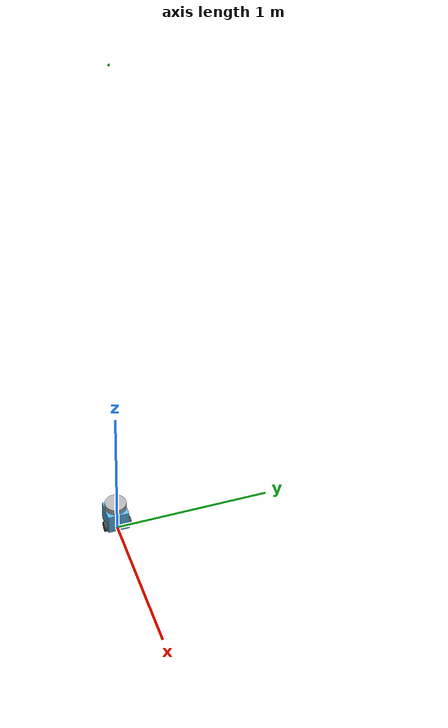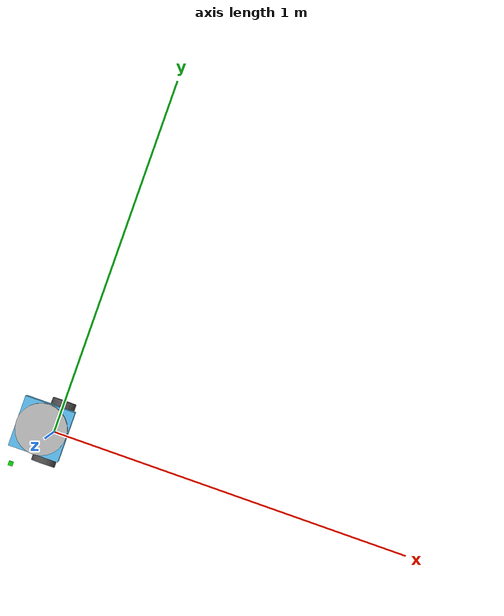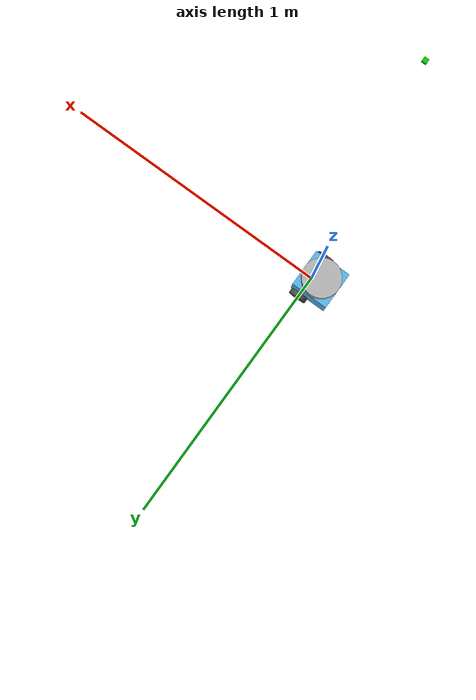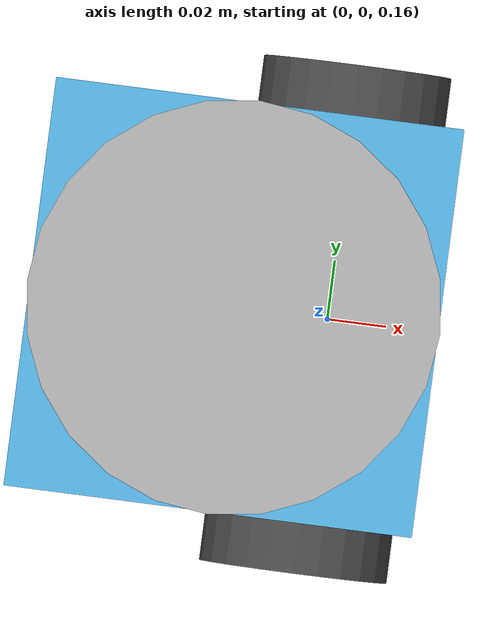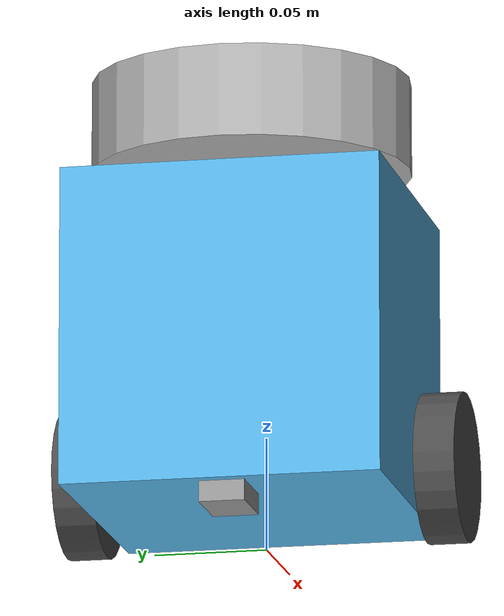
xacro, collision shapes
<?xml version="1.0" ?>
<robot name="turtlebot3_burger" xmlns:xacro="http://ros.org/wiki/xacro">
  <xacro:include filename="$(find turtlebot3_description)/urdf/common_properties.xacro"/>
  <xacro:include filename="$(find turtlebot3_description)/urdf/turtlebot3_burger.gazebo.xacro"/>

  <link name="base_footprint"/>

  <joint name="base_joint" type="fixed">
    <parent link="base_footprint"/>
    <child link="base_link"/>
    <origin xyz="0.0 0.0 0.010" rpy="0 0 0"/>
  </joint>
  <link name="base_link">
    <visual>
      <origin xyz="-0.032 0 0.0" rpy="0 0 0"/>
      <geometry>
        <mesh filename="package://turtlebot3_description/meshes/bases/burger_base.dae" scale="0.001 0.001 0.001"/>
      </geometry>
    </visual>

    <collision>
      <origin xyz="-0.032 0 0.070" rpy="0 0 0"/>
      <geometry>
        <box size="0.140 0.140 0.140"/>
      </geometry>
    </collision>

    <inertial>
      <origin xyz="-0.032 0 0" rpy="0 0 0"/>
      <mass value="1"/>
      <inertia ixx="0.01" ixy="0.0" ixz="0.0"
               iyy="0.01" iyz="0.0"
               izz="0.01" />
    </inertial>
  </link>

<joint name="gripper_joint" type="revolute">
    <limit effort="1000.0" lower="0" upper="0" velocity="0"/>
    <parent link="base_footprint"/>
    <child link="gripper_link"/>
    <origin xyz="0.12 0 0" rpy="0 0 0"/>
    <axis xyz="0 0 0"/>
  </joint>

  <link name="gripper_link">
    <visual>
      <origin xyz="0 0 0.00" rpy="0 0 0"/>
      <geometry>
        <mesh filename="package://turtlebot3_description/meshes/bases/gripper.dae" scale="0.001 0.001 0.001"/>
      </geometry>
    </visual>

    <inertial>

      <origin xyz="0 0 0" />
      <mass value="0.01" />
      <inertia ixx="0.001" ixy="0.0" ixz="0.0"
               iyy="0.001" iyz="0.0"
               izz="0.001" />
    </inertial>
  </link>

  <joint name="wheel_left_joint" type="continuous">
    <parent link="base_link"/>
    <child link="wheel_left_link"/>
    <origin xyz="0.0 0.08 0.023" rpy="${-M_PI*0.5} 0 0"/>
    <axis xyz="0 0 1"/>
  </joint>

  <link name="wheel_left_link">
    <visual>
      <origin xyz="0 0 0" rpy="${M_PI*0.5} 0 0"/>
      <geometry>
        <mesh filename="package://turtlebot3_description/meshes/wheels/left_tire.stl" scale="0.001 0.001 0.001"/>
      </geometry>
      <material name="dark"/>
    </visual>

    <collision>
      <origin xyz="0 0 0" rpy="0 0 0"/>
      <geometry>
        <cylinder length="0.018" radius="0.033"/>
      </geometry>
    </collision>

    <inertial>
      <origin xyz="0 0 0" />
      <mass value="0.01" />
      <inertia ixx="0.001" ixy="0.0" ixz="0.0"
               iyy="0.001" iyz="0.0"
               izz="0.001" />
    </inertial>
  </link>

  <joint name="wheel_right_joint" type="continuous">
    <parent link="base_link"/>
    <child link="wheel_right_link"/>
    <origin xyz="0.0 -0.08 0.023" rpy="${-M_PI*0.5} 0 0"/>
    <axis xyz="0 0 1"/>
  </joint>

  <link name="wheel_right_link">
    <visual>
      <origin xyz="0 0 0" rpy="${M_PI*0.5} 0 0"/>
      <geometry>
        <mesh filename="package://turtlebot3_description/meshes/wheels/right_tire.stl" scale="0.001 0.001 0.001"/>
      </geometry>
      <material name="dark"/>
    </visual>

    <collision>
      <origin xyz="0 0 0" rpy="0 0 0"/>
      <geometry>
        <cylinder length="0.018" radius="0.033"/>
      </geometry>
    </collision>

    <inertial>
      <origin xyz="0 0 0" />
      <mass value="0.01" />
      <inertia ixx="0.001" ixy="0.0" ixz="0.0"
               iyy="0.001" iyz="0.0"
               izz="0.001" />
    </inertial>
  </link>

  <joint name="caster_back_joint" type="fixed">
    <parent link="base_link"/>
    <child link="caster_back_link"/>
    <origin xyz="-0.081 0 -0.004" rpy="${-M_PI*0.5} 0 0"/>
  </joint>

  <link name="caster_back_link">
    <collision>
      <origin xyz="0 0 0" rpy="0 0 0"/>
      <geometry>
        <box size="0.030 0.010 0.020"/>
      </geometry>
    </collision>

    <inertial>
      <origin xyz="0 0 0" />
      <mass value="0.01" />
      <inertia ixx="0.001" ixy="0.0" ixz="0.0"
               iyy="0.001" iyz="0.0"
               izz="0.001" />
    </inertial>
  </link>

  <joint name="imu_joint" type="fixed">
    <parent link="base_link"/>
    <child link="imu_link"/>
    <origin xyz="-0.032 0 0.068" rpy="0 0 0"/>
  </joint>

  <link name="imu_link"/>

  <joint name="scan_joint" type="fixed">
    <parent link="base_link"/>
    <child link="base_scan"/>
    <origin xyz="-0.032 0 0.171" rpy="0 0 0"/>
  </joint>

  <link name="base_scan">
    <visual>
      <origin xyz="0 0 0.0" rpy="0 0 0"/>
      <geometry>
        <mesh filename="package://turtlebot3_description/meshes/sensors/lds.dae" scale="0.001 0.001 0.001"/>
      </geometry>
    </visual>

    <collision>
      <origin xyz="0 0 0" rpy="0 0 0"/>
      <geometry>
        <cylinder length="0.0408" radius="0.070"/>
      </geometry>
    </collision>

    <inertial>
      <mass value="0.01" />
      <origin xyz="0 0 0" />
      <inertia ixx="0.001" ixy="0.0" ixz="0.0"
               iyy="0.001" iyz="0.0"
               izz="0.001" />
    </inertial>
  </link>

  <xacro:property name="cameraSize" value="0.01"/>
  <xacro:property name="cameraMass" value="0.00000000000001"/>
    <link name="camera">
    <collision>
      <origin xyz="0 0 0" rpy="0 0 0"/>
      <geometry>
        <box size="${cameraSize} ${cameraSize} ${cameraSize}"/>
      </geometry>
    </collision>

    <visual>
      <origin xyz="0 0 0" rpy="0 0 0"/>
      <geometry>
        <box size="${cameraSize} ${cameraSize} ${cameraSize}"/>
      </geometry>
      <material name="green"/>
    </visual>

    <inertial>
      <mass value="${cameraMass}" />
      <origin xyz="0 0 0" rpy="0 0 0"/>
      <box_inertia m="${cameraMass}" x="${cameraSize}" y="${cameraSize}" z="${cameraSize}" />
      <inertia ixx="1e-6" ixy="0" ixz="0" iyy="1e-6" iyz="0" izz="1e-6" />
    </inertial>
  </link>

  <joint name="camera_joint" type="fixed">
    <axis xyz="0 1 0" />
    <origin xyz="0.01 0 0.15" rpy="0 0.5 0"/>
    <parent link="base_link"/>
    <child link="camera"/>
  </joint>

<link name="camera_up">
    <collision>
      <origin xyz="0 0 0" rpy="0 0 0"/>
      <geometry>
        <box size="${cameraSize} ${cameraSize} ${cameraSize}"/>
      </geometry>
    </collision>

    <visual>
      <origin xyz="0 0 0" rpy="0 0 0"/>
      <geometry>
        <box size="${cameraSize} ${cameraSize} ${cameraSize}"/>
      </geometry>
      <material name="green"/>
    </visual>

    <inertial>
      <mass value="${cameraMass}" />
      <origin xyz="0 0 0" rpy="0 0 0"/>
      <box_inertia m="${cameraMass}" x="${cameraSize}" y="${cameraSize}" z="${cameraSize}" />
      <inertia ixx="1e-6" ixy="0" ixz="0" iyy="1e-6" iyz="0" izz="1e-6" />
    </inertial>
</link>

<joint name="camera_up_joint" type="fixed">
    <axis xyz="0 1 0" />
    <origin xyz="0 0 4" rpy="0 1.57 0"/>
    <parent link="base_link"/>
    <child link="camera_up"/>
</joint>

</robot>

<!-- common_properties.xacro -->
<robot name="xacro_properties" xmlns:xacro="http://ros.org/wiki/xacro">
  <xacro:property name="M_PI" value="3.1415926535897931" />

  <!-- Init colour -->
  <material name="black">
      <color rgba="0.0 0.0 0.0 1.0"/>
  </material>

  <material name="clear">
      <color rgba="0.0 0.0 0.0 0.0"/>
    </material>

  <material name="dark">
    <color rgba="0.3 0.3 0.3 1.0"/>
  </material>
  <material name="light_black">
    <color rgba="0.4 0.4 0.4 1.0"/>
  </material>

  <material name="blue">
    <color rgba="0.0 0.0 0.8 1.0"/>
  </material>

  <material name="green">
    <color rgba="0.0 0.8 0.0 1.0"/>
  </material>

  <material name="grey">
    <color rgba="0.5 0.5 0.5 1.0"/>
  </material>

  <material name="orange">
    <color rgba="${255/255} ${108/255} ${10/255} 1.0"/>
  </material>

  <material name="brown">
    <color rgba="${222/255} ${207/255} ${195/255} 1.0"/>
  </material>

  <material name="red">
    <color rgba="0.8 0.0 0.0 1.0"/>
  </material>

  <material name="white">
    <color rgba="1.0 1.0 1.0 1.0"/>
  </material>
</robot>
